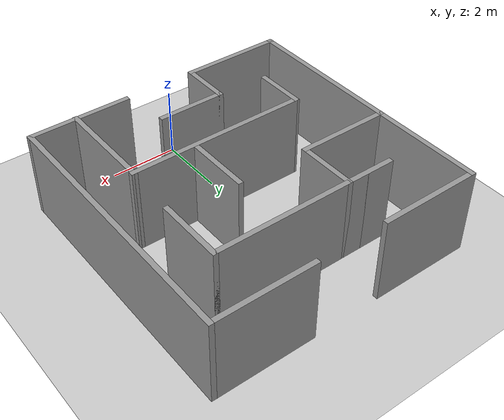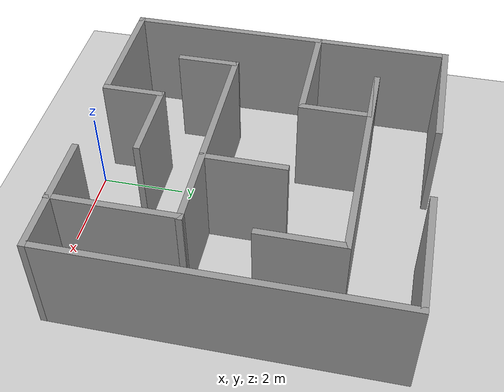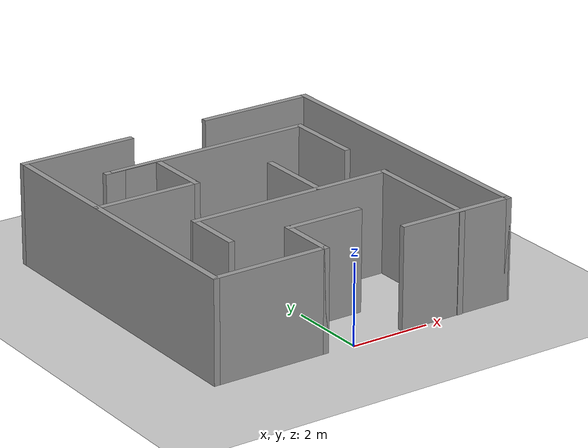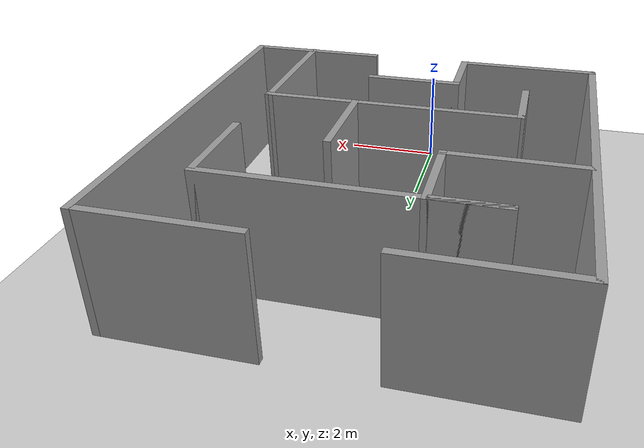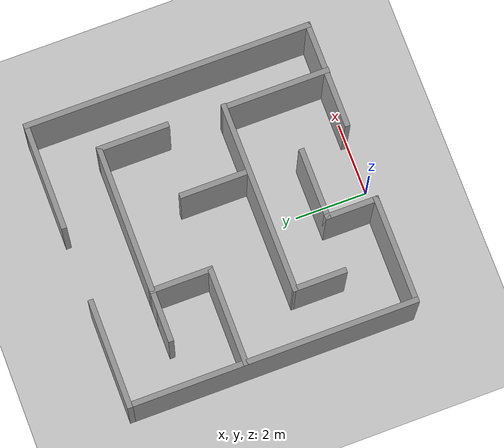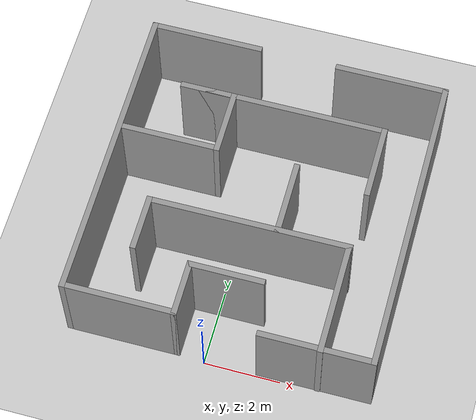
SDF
<sdf version="1.7">
 <world name="default">
  <light name="sun" type="directional">
   <pose>0 0 10 0 -0 0</pose>
   <diffuse>0.8 0.8 0.8 1</diffuse>
   <specular>0.2 0.2 0.2 1</specular>
   <attenuation>
    <range>1000</range>
    <constant>0.9</constant>
    <linear>0.01</linear>
    <quadratic>0.001</quadratic>
   </attenuation>
   <direction>-0.5 0.1 -0.9</direction>
   <spot><inner_angle>0</inner_angle><outer_angle>0</outer_angle><falloff>0</falloff></spot>
  </light>
  <model name="ground_plane">
   <static>1</static>
   <link name="link">
    <collision name="collision">
     <geometry><plane><normal>0 0 1</normal><size>100 100</size></plane></geometry>
     <surface>
      <contact><collide_bitmask>65535</collide_bitmask></contact>
      <friction><ode><mu>100</mu><mu2>50</mu2></ode></friction>
     </surface>
    </collision>
    <visual name="visual">
     <cast_shadows>0</cast_shadows>
     <geometry><plane><normal>0 0 1</normal><size>100 100</size></plane></geometry>
     <material>
      <script><uri>file://media/materials/scripts/gazebo.material</uri><name>Gazebo/Grey</name></script>
     </material>
    </visual>
   </link>
  </model>
  <gravity>0 0 -9.8</gravity>
  <magnetic_field>6e-06 2.3e-05 -4.2e-05</magnetic_field>
  <atmosphere type="adiabatic"/>
  <physics type="ode">
   <max_step_size>0.001</max_step_size>
   <real_time_factor>1</real_time_factor>
   <real_time_update_rate>1000</real_time_update_rate>
  </physics>
  <scene><ambient>0.4 0.4 0.4 1</ambient><background>0.7 0.7 0.7 1</background><shadows>1</shadows></scene>
  <spherical_coordinates>
   <surface_model>EARTH_WGS84</surface_model>
   <latitude_deg>0</latitude_deg>
   <longitude_deg>0</longitude_deg>
   <elevation>0</elevation>
   <heading_deg>0</heading_deg>
  </spherical_coordinates>
  <model name="maze2">
   <pose>0.355512 4.18591 0 0 -0 0</pose>
   <link name="Wall_52">
    <collision name="Wall_52_Collision">
     <geometry><box><size>8 0.15 2.5</size></box></geometry>
     <pose>0 0 1.25 0 -0 0</pose>
    </collision>
    <visual name="Wall_52_Visual">
     <pose>0 0 1.25 0 -0 0</pose>
     <geometry><box><size>8 0.15 2.5</size></box></geometry>
     <material>
      <script><uri>file://media/materials/scripts/gazebo.material</uri><name>Gazebo/Grey</name></script>
      <ambient>1 1 1 1</ambient>
     </material>
     <meta><layer>0</layer></meta>
    </visual>
    <pose>3.925 -0.145783 0 0 -0 -1.5708</pose>
   </link>
   <link name="Wall_54">
    <collision name="Wall_54_Collision">
     <geometry><box><size>8 0.15 2.5</size></box></geometry>
     <pose>0 0 1.25 0 -0 0</pose>
    </collision>
    <visual name="Wall_54_Visual">
     <pose>0 0 1.25 0 -0 0</pose>
     <geometry><box><size>8 0.15 2.5</size></box></geometry>
     <material>
      <script><uri>file://media/materials/scripts/gazebo.material</uri><name>Gazebo/Grey</name></script>
      <ambient>1 1 1 1</ambient>
     </material>
     <meta><layer>0</layer></meta>
    </visual>
    <pose>-3.925 -0.145783 0 0 -0 -1.5708</pose>
   </link>
   <link name="Wall_58">
    <collision name="Wall_58_Collision">
     <geometry><box><size>3 0.15 2.5</size></box></geometry>
     <pose>0 0 1.25 0 -0 0</pose>
    </collision>
    <visual name="Wall_58_Visual">
     <pose>0 0 1.25 0 -0 0</pose>
     <geometry><box><size>3 0.15 2.5</size></box></geometry>
     <material>
      <script><uri>file://media/materials/scripts/gazebo.material</uri><name>Gazebo/Grey</name></script>
      <ambient>1 1 1 1</ambient>
     </material>
     <meta><layer>0</layer></meta>
    </visual>
    <pose>-2.5 3.77922 0 0 -0 0</pose>
   </link>
   <link name="Wall_60">
    <collision name="Wall_60_Collision">
     <geometry><box><size>3 0.15 2.5</size></box></geometry>
     <pose>0 0 1.25 0 -0 0</pose>
    </collision>
    <visual name="Wall_60_Visual">
     <pose>0 0 1.25 0 -0 0</pose>
     <geometry><box><size>3 0.15 2.5</size></box></geometry>
     <material>
      <script><uri>file://media/materials/scripts/gazebo.material</uri><name>Gazebo/Grey</name></script>
      <ambient>1 1 1 1</ambient>
     </material>
     <meta><layer>0</layer></meta>
    </visual>
    <pose>2.5 3.77922 0 0 -0 3.14159</pose>
   </link>
   <link name="Wall_63">
    <collision name="Wall_63_Collision">
     <geometry><box><size>3 0.15 2.5</size></box></geometry>
     <pose>0 0 1.25 0 -0 0</pose>
    </collision>
    <visual name="Wall_63_Visual">
     <pose>0 0 1.25 0 -0 0</pose>
     <geometry><box><size>3 0.15 2.5</size></box></geometry>
     <material>
      <script><uri>file://media/materials/scripts/gazebo.material</uri><name>Gazebo/Grey</name></script>
      <ambient>1 1 1 1</ambient>
     </material>
     <meta><layer>0</layer></meta>
    </visual>
    <pose>-2.5 -4.07078 0 0 -0 0</pose>
   </link>
   <link name="Wall_65">
    <collision name="Wall_65_Collision">
     <geometry><box><size>3 0.15 2.5</size></box></geometry>
     <pose>0 0 1.25 0 -0 0</pose>
    </collision>
    <visual name="Wall_65_Visual">
     <pose>0 0 1.25 0 -0 0</pose>
     <geometry><box><size>3 0.15 2.5</size></box></geometry>
     <material>
      <script><uri>file://media/materials/scripts/gazebo.material</uri><name>Gazebo/Grey</name></script>
      <ambient>1 1 1 1</ambient>
     </material>
     <meta><layer>0</layer></meta>
    </visual>
    <pose>2.5 -4.07078 0 0 -0 3.14159</pose>
   </link>
   <link name="Wall_67">
    <collision name="Wall_67_Collision">
     <geometry><box><size>1.5 0.15 2.5</size></box></geometry>
     <pose>0 0 1.25 0 -0 0</pose>
    </collision>
    <visual name="Wall_67_Visual">
     <pose>0 0 1.25 0 -0 0</pose>
     <geometry><box><size>1.5 0.15 2.5</size></box></geometry>
     <material>
      <script><uri>file://media/materials/scripts/gazebo.material</uri><name>Gazebo/Grey</name></script>
      <ambient>1 1 1 1</ambient>
     </material>
     <meta><layer>0</layer></meta>
    </visual>
    <pose>-1.075 -3.39578 0 0 -0 1.5708</pose>
   </link>
   <link name="Wall_68">
    <collision name="Wall_68_Collision">
     <geometry><box><size>2 0.15 2.5</size></box></geometry>
     <pose>0 0 1.25 0 -0 0</pose>
    </collision>
    <visual name="Wall_68_Visual">
     <pose>0 0 1.25 0 -0 0</pose>
     <geometry><box><size>2 0.15 2.5</size></box></geometry>
     <material>
      <script><uri>file://media/materials/scripts/gazebo.material</uri><name>Gazebo/Grey</name></script>
      <ambient>1 1 1 1</ambient>
     </material>
     <meta><layer>0</layer></meta>
    </visual>
    <pose>-0.15 -2.72078 0 0 -0 0</pose>
   </link>
   <link name="Wall_70">
    <collision name="Wall_70_Collision">
     <geometry><box><size>3 0.15 2.5</size></box></geometry>
     <pose>0 0 1.25 0 -0 0</pose>
    </collision>
    <visual name="Wall_70_Visual">
     <pose>0 0 1.25 0 -0 0</pose>
     <geometry><box><size>3 0.15 2.5</size></box></geometry>
     <material>
      <script><uri>file://media/materials/scripts/gazebo.material</uri><name>Gazebo/Grey</name></script>
      <ambient>1 1 1 1</ambient>
     </material>
     <meta><layer>0</layer></meta>
    </visual>
    <pose>2.59787 -2.66221 0 0 -0 1.5708</pose>
   </link>
   <link name="Wall_71">
    <collision name="Wall_71_Collision">
     <geometry><box><size>5.32698 0.15 2.5</size></box></geometry>
     <pose>0 0 1.25 0 -0 0</pose>
    </collision>
    <visual name="Wall_71_Visual">
     <pose>0 0 1.25 0 -0 0</pose>
     <geometry><box><size>5.32698 0.15 2.5</size></box></geometry>
     <material>
      <script><uri>file://media/materials/scripts/gazebo.material</uri><name>Gazebo/Grey</name></script>
      <ambient>1 1 1 1</ambient>
     </material>
     <meta><layer>0</layer></meta>
    </visual>
    <pose>0.028634 -1.24683 0 0 -0 -3.13788</pose>
   </link>
   <link name="Wall_72">
    <collision name="Wall_72_Collision">
     <geometry><box><size>1.5 0.15 2.5</size></box></geometry>
     <pose>0 0 1.25 0 -0 0</pose>
    </collision>
    <visual name="Wall_72_Visual">
     <pose>0 0 1.25 0 -0 0</pose>
     <geometry><box><size>1.5 0.15 2.5</size></box></geometry>
     <material>
      <script><uri>file://media/materials/scripts/gazebo.material</uri><name>Gazebo/Grey</name></script>
      <ambient>1 1 1 1</ambient>
     </material>
     <meta><layer>0</layer></meta>
    </visual>
    <pose>-2.55984 -1.93145 0 0 -0 -1.5708</pose>
   </link>
   <link name="Wall_74">
    <collision name="Wall_74_Collision">
     <geometry><box><size>2 0.15 2.5</size></box></geometry>
     <pose>0 0 1.25 0 -0 0</pose>
    </collision>
    <visual name="Wall_74_Visual">
     <pose>0 0 1.25 0 -0 0</pose>
     <geometry><box><size>2 0.15 2.5</size></box></geometry>
     <material>
      <script><uri>file://media/materials/scripts/gazebo.material</uri><name>Gazebo/Grey</name></script>
      <ambient>1 1 1 1</ambient>
     </material>
     <meta><layer>0</layer></meta>
    </visual>
    <pose>0.770482 -0.315331 0 0 -0 1.5708</pose>
   </link>
   <link name="Wall_76">
    <collision name="Wall_76_Collision">
     <geometry><box><size>2.75 0.15 2.5</size></box></geometry>
     <pose>0 0 1.25 0 -0 0</pose>
    </collision>
    <visual name="Wall_76_Visual">
     <pose>0 0 1.25 0 -0 0</pose>
     <geometry><box><size>2.75 0.15 2.5</size></box></geometry>
     <material>
      <script><uri>file://media/materials/scripts/gazebo.material</uri><name>Gazebo/Grey</name></script>
      <ambient>1 1 1 1</ambient>
     </material>
     <meta><layer>0</layer></meta>
    </visual>
    <pose>-2.62302 0.606292 0 0 -0 0</pose>
   </link>
   <link name="Wall_77">
    <collision name="Wall_77_Collision">
     <geometry><box><size>1.75 0.15 2.5</size></box></geometry>
     <pose>0 0 1.25 0 -0 0</pose>
    </collision>
    <visual name="Wall_77_Visual">
     <pose>0 0 1.25 0 -0 0</pose>
     <geometry><box><size>1.75 0.15 2.5</size></box></geometry>
     <material>
      <script><uri>file://media/materials/scripts/gazebo.material</uri><name>Gazebo/Grey</name></script>
      <ambient>1 1 1 1</ambient>
     </material>
     <meta><layer>0</layer></meta>
    </visual>
    <pose>-1.32302 1.40629 0 0 -0 1.5708</pose>
   </link>
   <link name="Wall_78">
    <collision name="Wall_78_Collision">
     <geometry><box><size>1.5 0.15 2.5</size></box></geometry>
     <pose>0 0 1.25 0 -0 0</pose>
    </collision>
    <visual name="Wall_78_Visual">
     <pose>0 0 1.25 0 -0 0</pose>
     <geometry><box><size>1.5 0.15 2.5</size></box></geometry>
     <material>
      <script><uri>file://media/materials/scripts/gazebo.material</uri><name>Gazebo/Grey</name></script>
      <ambient>1 1 1 1</ambient>
     </material>
     <meta><layer>0</layer></meta>
    </visual>
    <pose>-1.99802 2.20629 0 0 -0 3.14159</pose>
   </link>
   <link name="Wall_79">
    <collision name="Wall_79_Collision">
     <geometry><box><size>5.5 0.15 2.5</size></box></geometry>
     <pose>0 0 1.25 0 -0 0</pose>
    </collision>
    <visual name="Wall_79_Visual">
     <pose>0 0 1.25 0 -0 0</pose>
     <geometry><box><size>5.5 0.15 2.5</size></box></geometry>
     <material>
      <script><uri>file://media/materials/scripts/gazebo.material</uri><name>Gazebo/Grey</name></script>
      <ambient>1 1 1 1</ambient>
     </material>
     <meta><layer>0</layer></meta>
    </visual>
    <pose>0.001982 2.20629 0 0 -0 0</pose>
   </link>
   <link name="Wall_80">
    <collision name="Wall_80_Collision">
     <geometry><box><size>2 0.15 2.5</size></box></geometry>
     <pose>0 0 1.25 0 -0 0</pose>
    </collision>
    <visual name="Wall_80_Visual">
     <pose>0 0 1.25 0 -0 0</pose>
     <geometry><box><size>2 0.15 2.5</size></box></geometry>
     <material>
      <script><uri>file://media/materials/scripts/gazebo.material</uri><name>Gazebo/Grey</name></script>
      <ambient>1 1 1 1</ambient>
     </material>
     <meta><layer>0</layer></meta>
    </visual>
    <pose>2.67698 1.28129 0 0 -0 -1.5708</pose>
   </link>
   <static>1</static>
  </model>
 </world>
</sdf>
